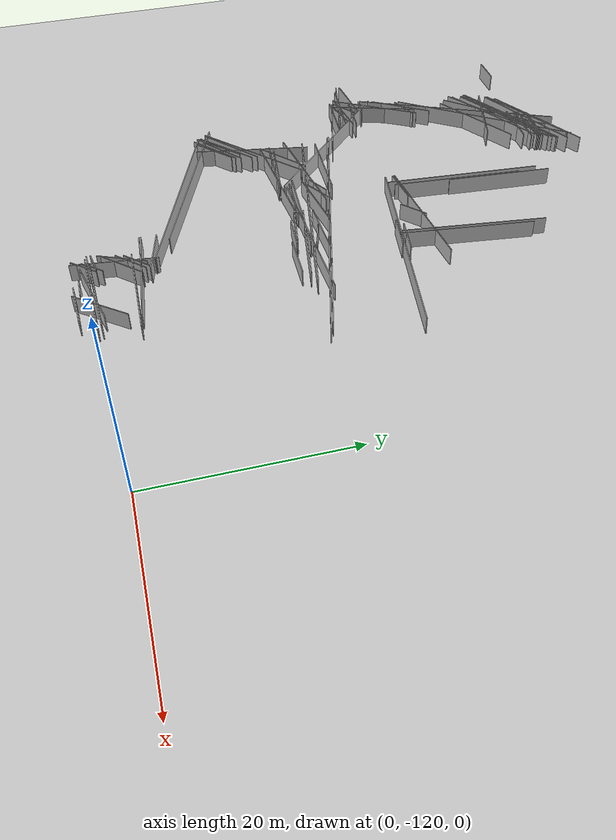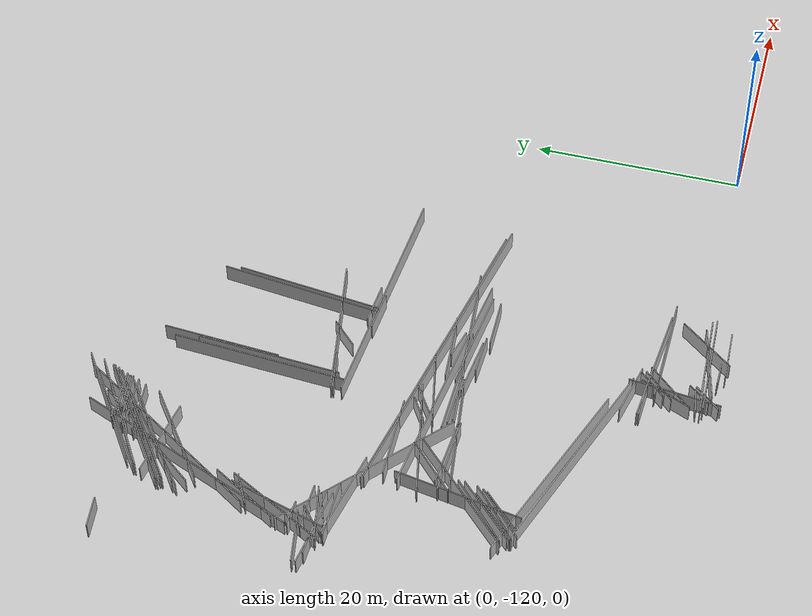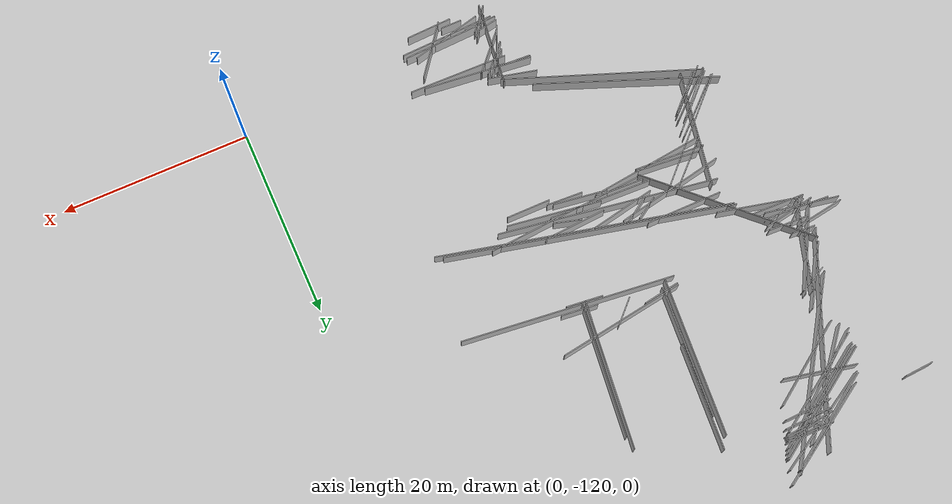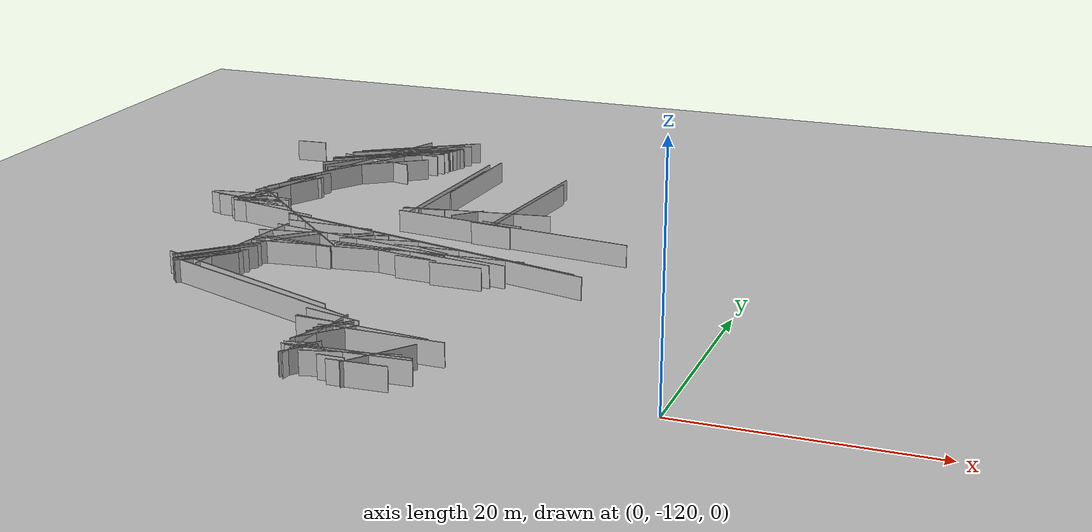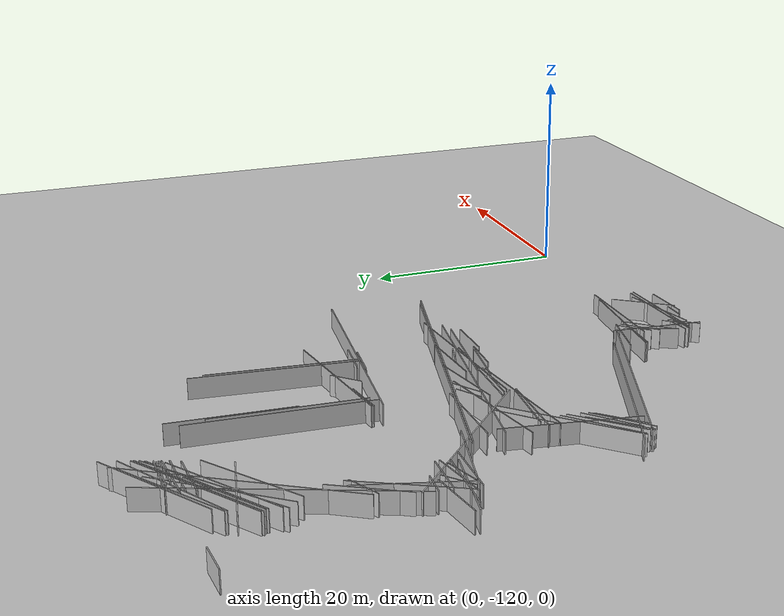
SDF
<sdf version="1.6">
 <world name="slam_world">
  <model name="ground_plane">
   <static>true</static>
   <link name="link">
    <collision name="collision">
     <geometry><plane><normal>0 0 1</normal><size>100 100</size></plane></geometry>
    </collision>
    <visual name="visual">
     <geometry><plane><normal>0 0 1</normal><size>100 100</size></plane></geometry>
     <material>
      <ambient>0.8 0.8 0.8 1</ambient>
      <diffuse>0.8 0.8 0.8 1</diffuse>
      <specular>0.8 0.8 0.8 1</specular>
     </material>
    </visual>
   </link>
  </model>
  <model name="wall_6">
   <static>true</static>
   <pose>-22.6 -89.8 1.0 0 0 -0.10768987083282093</pose>
   <link name="link">
    <collision name="collision"><geometry><box><size>22.32935287911408 0.1 2.0</size></box></geometry></collision>
    <visual name="visual">
     <geometry><box><size>22.32935287911408 0.1 2.0</size></box></geometry>
     <material><ambient>0.5 0.5 0.5 1</ambient><diffuse>0.7 0.7 0.7 1</diffuse></material>
    </visual>
   </link>
  </model>
  <model name="wall_36">
   <static>true</static>
   <pose>-46.5 -91.1 1.0 0 0 -0.03569911267932193</pose>
   <link name="link">
    <collision name="collision"><geometry><box><size>5.603570290448761 0.1 2.0</size></box></geometry></collision>
    <visual name="visual">
     <geometry><box><size>5.603570290448761 0.1 2.0</size></box></geometry>
     <material><ambient>0.5 0.5 0.5 1</ambient><diffuse>0.7 0.7 0.7 1</diffuse></material>
    </visual>
   </link>
  </model>
  <model name="wall_76">
   <static>true</static>
   <pose>-27.400000000000002 -120.6 1.0 0 0 0.17985349979247486</pose>
   <link name="link">
    <collision name="collision"><geometry><box><size>2.236067977499784 0.1 2.0</size></box></geometry></collision>
    <visual name="visual">
     <geometry><box><size>2.236067977499784 0.1 2.0</size></box></geometry>
     <material><ambient>0.5 0.5 0.5 1</ambient><diffuse>0.7 0.7 0.7 1</diffuse></material>
    </visual>
   </link>
  </model>
  <model name="wall_88">
   <static>true</static>
   <pose>-40.4 -68.3 1.0 0 0 0.5743048301747012</pose>
   <link name="link">
    <collision name="collision">
     <geometry><box><size>12.149074038789951 0.1 2.0</size></box></geometry>
    </collision>
    <visual name="visual">
     <geometry><box><size>12.149074038789951 0.1 2.0</size></box></geometry>
     <material><ambient>0.5 0.5 0.5 1</ambient><diffuse>0.7 0.7 0.7 1</diffuse></material>
    </visual>
   </link>
  </model>
  <model name="wall_90">
   <static>true</static>
   <pose>-27.0 -100.30000000000001 1.0 0 0 -0.05258306161094246</pose>
   <link name="link">
    <collision name="collision"><geometry><box><size>3.80525951808809 0.1 2.0</size></box></geometry></collision>
    <visual name="visual">
     <geometry><box><size>3.80525951808809 0.1 2.0</size></box></geometry>
     <material><ambient>0.5 0.5 0.5 1</ambient><diffuse>0.7 0.7 0.7 1</diffuse></material>
    </visual>
   </link>
  </model>
  <model name="wall_91">
   <static>true</static>
   <pose>-43.60000000000001 -103.9 1.0 0 0 0.7469555733762605</pose>
   <link name="link">
    <collision name="collision"><geometry><box><size>7.359347797189638 0.1 2.0</size></box></geometry></collision>
    <visual name="visual">
     <geometry><box><size>7.359347797189638 0.1 2.0</size></box></geometry>
     <material><ambient>0.5 0.5 0.5 1</ambient><diffuse>0.7 0.7 0.7 1</diffuse></material>
    </visual>
   </link>
  </model>
  <model name="wall_94">
   <static>true</static>
   <pose>-31.7 -96.89999999999999 1.0 0 0 0.19204801724073095</pose>
   <link name="link">
    <collision name="collision"><geometry><box><size>7.334848328356896 0.1 2.0</size></box></geometry></collision>
    <visual name="visual">
     <geometry><box><size>7.334848328356896 0.1 2.0</size></box></geometry>
     <material><ambient>0.5 0.5 0.5 1</ambient><diffuse>0.7 0.7 0.7 1</diffuse></material>
    </visual>
   </link>
  </model>
  <model name="wall_99">
   <static>true</static>
   <pose>-42.0 -75.3 1.0 0 0 0.6156198894291087</pose>
   <link name="link">
    <collision name="collision">
     <geometry><box><size>10.043903623591762 0.1 2.0</size></box></geometry>
    </collision>
    <visual name="visual">
     <geometry><box><size>10.043903623591762 0.1 2.0</size></box></geometry>
     <material><ambient>0.5 0.5 0.5 1</ambient><diffuse>0.7 0.7 0.7 1</diffuse></material>
    </visual>
   </link>
  </model>
  <model name="wall_104">
   <static>true</static>
   <pose>-44.8 -91.8 1.0 0 0 -0.22849663929186226</pose>
   <link name="link">
    <collision name="collision"><geometry><box><size>8.829496021857647 0.1 2.0</size></box></geometry></collision>
    <visual name="visual">
     <geometry><box><size>8.829496021857647 0.1 2.0</size></box></geometry>
     <material><ambient>0.5 0.5 0.5 1</ambient><diffuse>0.7 0.7 0.7 1</diffuse></material>
    </visual>
   </link>
  </model>
  <model name="wall_106">
   <static>true</static>
   <pose>-38.1 -109.3 1.0 0 0 -0.37089128881266237</pose>
   <link name="link">
    <collision name="collision">
     <geometry><box><size>19.313207915827967 0.1 2.0</size></box></geometry>
    </collision>
    <visual name="visual">
     <geometry><box><size>19.313207915827967 0.1 2.0</size></box></geometry>
     <material><ambient>0.5 0.5 0.5 1</ambient><diffuse>0.7 0.7 0.7 1</diffuse></material>
    </visual>
   </link>
  </model>
  <model name="wall_108">
   <static>true</static>
   <pose>-26.8 -97.39999999999999 1.0 0 0 0.060532019782107975</pose>
   <link name="link">
    <collision name="collision"><geometry><box><size>6.612110101926617 0.1 2.0</size></box></geometry></collision>
    <visual name="visual">
     <geometry><box><size>6.612110101926617 0.1 2.0</size></box></geometry>
     <material><ambient>0.5 0.5 0.5 1</ambient><diffuse>0.7 0.7 0.7 1</diffuse></material>
    </visual>
   </link>
  </model>
  <model name="wall_116">
   <static>true</static>
   <pose>-23.0 -121.1 1.0 0 0 0.2386093225082004</pose>
   <link name="link">
    <collision name="collision"><geometry><box><size>7.615773105863913 0.1 2.0</size></box></geometry></collision>
    <visual name="visual">
     <geometry><box><size>7.615773105863913 0.1 2.0</size></box></geometry>
     <material><ambient>0.5 0.5 0.5 1</ambient><diffuse>0.7 0.7 0.7 1</diffuse></material>
    </visual>
   </link>
  </model>
  <model name="wall_129">
   <static>true</static>
   <pose>-41.6 -71.1 1.0 0 0 0.5921866795496418</pose>
   <link name="link">
    <collision name="collision">
     <geometry><box><size>13.257450735341235 0.1 2.0</size></box></geometry>
    </collision>
    <visual name="visual">
     <geometry><box><size>13.257450735341235 0.1 2.0</size></box></geometry>
     <material><ambient>0.5 0.5 0.5 1</ambient><diffuse>0.7 0.7 0.7 1</diffuse></material>
    </visual>
   </link>
  </model>
  <model name="wall_158">
   <static>true</static>
   <pose>-43.2 -105.9 1.0 0 0 0.7853981633974462</pose>
   <link name="link">
    <collision name="collision"><geometry><box><size>4.808326112068521 0.1 2.0</size></box></geometry></collision>
    <visual name="visual">
     <geometry><box><size>4.808326112068521 0.1 2.0</size></box></geometry>
     <material><ambient>0.5 0.5 0.5 1</ambient><diffuse>0.7 0.7 0.7 1</diffuse></material>
    </visual>
   </link>
  </model>
  <model name="wall_184">
   <static>true</static>
   <pose>-32.1 -80.3 1.0 0 0 1.498632697835239</pose>
   <link name="link">
    <collision name="collision"><geometry><box><size>16.64331697709323 0.1 2.0</size></box></geometry></collision>
    <visual name="visual">
     <geometry><box><size>16.64331697709323 0.1 2.0</size></box></geometry>
     <material><ambient>0.5 0.5 0.5 1</ambient><diffuse>0.7 0.7 0.7 1</diffuse></material>
    </visual>
   </link>
  </model>
  <model name="wall_205">
   <static>true</static>
   <pose>-31.6 -81.1 1.0 0 0 1.4984589962563017</pose>
   <link name="link">
    <collision name="collision">
     <geometry><box><size>13.836184445142393 0.1 2.0</size></box></geometry>
    </collision>
    <visual name="visual">
     <geometry><box><size>13.836184445142393 0.1 2.0</size></box></geometry>
     <material><ambient>0.5 0.5 0.5 1</ambient><diffuse>0.7 0.7 0.7 1</diffuse></material>
    </visual>
   </link>
  </model>
  <model name="wall_221">
   <static>true</static>
   <pose>-36.10000000000001 -110.9 1.0 0 0 -0.36100530342246234</pose>
   <link name="link">
    <collision name="collision"><geometry><box><size>20.95041765693467 0.1 2.0</size></box></geometry></collision>
    <visual name="visual">
     <geometry><box><size>20.95041765693467 0.1 2.0</size></box></geometry>
     <material><ambient>0.5 0.5 0.5 1</ambient><diffuse>0.7 0.7 0.7 1</diffuse></material>
    </visual>
   </link>
  </model>
  <model name="wall_222">
   <static>true</static>
   <pose>-38.2 -99.7 1.0 0 0 -0.09065988720074433</pose>
   <link name="link">
    <collision name="collision"><geometry><box><size>6.62721661031235 0.1 2.0</size></box></geometry></collision>
    <visual name="visual">
     <geometry><box><size>6.62721661031235 0.1 2.0</size></box></geometry>
     <material><ambient>0.5 0.5 0.5 1</ambient><diffuse>0.7 0.7 0.7 1</diffuse></material>
    </visual>
   </link>
  </model>
  <model name="wall_232">
   <static>true</static>
   <pose>-30.3 -98.8 1.0 0 0 -0.03702011587393054</pose>
   <link name="link">
    <collision name="collision">
     <geometry><box><size>10.807404868885042 0.1 2.0</size></box></geometry>
    </collision>
    <visual name="visual">
     <geometry><box><size>10.807404868885042 0.1 2.0</size></box></geometry>
     <material><ambient>0.5 0.5 0.5 1</ambient><diffuse>0.7 0.7 0.7 1</diffuse></material>
    </visual>
   </link>
  </model>
  <model name="wall_240">
   <static>true</static>
   <pose>-41.8 -72.4 1.0 0 0 0.6747409422235522</pose>
   <link name="link">
    <collision name="collision">
     <geometry><box><size>14.086873322352272 0.1 2.0</size></box></geometry>
    </collision>
    <visual name="visual">
     <geometry><box><size>14.086873322352272 0.1 2.0</size></box></geometry>
     <material><ambient>0.5 0.5 0.5 1</ambient><diffuse>0.7 0.7 0.7 1</diffuse></material>
    </visual>
   </link>
  </model>
  <model name="wall_243">
   <static>true</static>
   <pose>-46.7 -83.0 1.0 0 0 1.0303768265243132</pose>
   <link name="link">
    <collision name="collision"><geometry><box><size>6.997142273814357 0.1 2.0</size></box></geometry></collision>
    <visual name="visual">
     <geometry><box><size>6.997142273814357 0.1 2.0</size></box></geometry>
     <material><ambient>0.5 0.5 0.5 1</ambient><diffuse>0.7 0.7 0.7 1</diffuse></material>
    </visual>
   </link>
  </model>
  <model name="wall_248">
   <static>true</static>
   <pose>-26.400000000000002 -98.80000000000001 1.0 0 0 0.07216362895965775</pose>
   <link name="link">
    <collision name="collision"><geometry><box><size>16.64331697709324 0.1 2.0</size></box></geometry></collision>
    <visual name="visual">
     <geometry><box><size>16.64331697709324 0.1 2.0</size></box></geometry>
     <material><ambient>0.5 0.5 0.5 1</ambient><diffuse>0.7 0.7 0.7 1</diffuse></material>
    </visual>
   </link>
  </model>
  <model name="wall_265">
   <static>true</static>
   <pose>-23.6 -89.2 1.0 0 0 -0.10487693873023546</pose>
   <link name="link">
    <collision name="collision">
     <geometry><box><size>3.8209946349085575 0.1 2.0</size></box></geometry>
    </collision>
    <visual name="visual">
     <geometry><box><size>3.8209946349085575 0.1 2.0</size></box></geometry>
     <material><ambient>0.5 0.5 0.5 1</ambient><diffuse>0.7 0.7 0.7 1</diffuse></material>
    </visual>
   </link>
  </model>
  <model name="wall_279">
   <static>true</static>
   <pose>-27.0 -118.6 1.0 0 0 1.457645345204412</pose>
   <link name="link">
    <collision name="collision"><geometry><box><size>8.856635930193809 0.1 2.0</size></box></geometry></collision>
    <visual name="visual">
     <geometry><box><size>8.856635930193809 0.1 2.0</size></box></geometry>
     <material><ambient>0.5 0.5 0.5 1</ambient><diffuse>0.7 0.7 0.7 1</diffuse></material>
    </visual>
   </link>
  </model>
  <model name="wall_322">
   <static>true</static>
   <pose>-28.5 -99.80000000000001 1.0 0 0 -0.1418970546041635</pose>
   <link name="link">
    <collision name="collision"><geometry><box><size>5.656854249492378 0.1 2.0</size></box></geometry></collision>
    <visual name="visual">
     <geometry><box><size>5.656854249492378 0.1 2.0</size></box></geometry>
     <material><ambient>0.5 0.5 0.5 1</ambient><diffuse>0.7 0.7 0.7 1</diffuse></material>
    </visual>
   </link>
  </model>
  <model name="wall_326">
   <static>true</static>
   <pose>-38.6 -100.0 1.0 0 0 -0.05400150037596912</pose>
   <link name="link">
    <collision name="collision"><geometry><box><size>7.410802925459554 0.1 2.0</size></box></geometry></collision>
    <visual name="visual">
     <geometry><box><size>7.410802925459554 0.1 2.0</size></box></geometry>
     <material><ambient>0.5 0.5 0.5 1</ambient><diffuse>0.7 0.7 0.7 1</diffuse></material>
    </visual>
   </link>
  </model>
  <model name="wall_362">
   <static>true</static>
   <pose>-23.2 -100.8 1.0 0 0 0.0</pose>
   <link name="link">
    <collision name="collision"><geometry><box><size>4.600000000000001 0.1 2.0</size></box></geometry></collision>
    <visual name="visual">
     <geometry><box><size>4.600000000000001 0.1 2.0</size></box></geometry>
     <material><ambient>0.5 0.5 0.5 1</ambient><diffuse>0.7 0.7 0.7 1</diffuse></material>
    </visual>
   </link>
  </model>
  <model name="wall_367">
   <static>true</static>
   <pose>-28.0 -96.19999999999999 1.0 0 0 -0.2272956190015954</pose>
   <link name="link">
    <collision name="collision"><geometry><box><size>30.17614952242914 0.1 2.0</size></box></geometry></collision>
    <visual name="visual">
     <geometry><box><size>30.17614952242914 0.1 2.0</size></box></geometry>
     <material><ambient>0.5 0.5 0.5 1</ambient><diffuse>0.7 0.7 0.7 1</diffuse></material>
    </visual>
   </link>
  </model>
  <model name="wall_402">
   <static>true</static>
   <pose>-32.5 -99.1 1.0 0 0 -0.038442590021188536</pose>
   <link name="link">
    <collision name="collision"><geometry><box><size>5.203844732503074 0.1 2.0</size></box></geometry></collision>
    <visual name="visual">
     <geometry><box><size>5.203844732503074 0.1 2.0</size></box></geometry>
     <material><ambient>0.5 0.5 0.5 1</ambient><diffuse>0.7 0.7 0.7 1</diffuse></material>
    </visual>
   </link>
  </model>
  <model name="wall_403">
   <static>true</static>
   <pose>-33.1 -96.3 1.0 0 0 0.5713374798336229</pose>
   <link name="link">
    <collision name="collision">
     <geometry><box><size>3.3286633954186358 0.1 2.0</size></box></geometry>
    </collision>
    <visual name="visual">
     <geometry><box><size>3.3286633954186358 0.1 2.0</size></box></geometry>
     <material><ambient>0.5 0.5 0.5 1</ambient><diffuse>0.7 0.7 0.7 1</diffuse></material>
    </visual>
   </link>
  </model>
  <model name="wall_405">
   <static>true</static>
   <pose>-23.6 -82.1 1.0 0 0 1.454441161588022</pose>
   <link name="link">
    <collision name="collision">
     <geometry><box><size>15.504837954651435 0.1 2.0</size></box></geometry>
    </collision>
    <visual name="visual">
     <geometry><box><size>15.504837954651435 0.1 2.0</size></box></geometry>
     <material><ambient>0.5 0.5 0.5 1</ambient><diffuse>0.7 0.7 0.7 1</diffuse></material>
    </visual>
   </link>
  </model>
  <model name="wall_406">
   <static>true</static>
   <pose>-26.400000000000002 -117.9 1.0 0 0 0.8408966686431649</pose>
   <link name="link">
    <collision name="collision"><geometry><box><size>5.099019513592782 0.1 2.0</size></box></geometry></collision>
    <visual name="visual">
     <geometry><box><size>5.099019513592782 0.1 2.0</size></box></geometry>
     <material><ambient>0.5 0.5 0.5 1</ambient><diffuse>0.7 0.7 0.7 1</diffuse></material>
    </visual>
   </link>
  </model>
  <model name="wall_413">
   <static>true</static>
   <pose>-46.300000000000004 -82.7 1.0 0 0 0.46364760900080815</pose>
   <link name="link">
    <collision name="collision">
     <geometry><box><size>3.1304951684997055 0.1 2.0</size></box></geometry>
    </collision>
    <visual name="visual">
     <geometry><box><size>3.1304951684997055 0.1 2.0</size></box></geometry>
     <material><ambient>0.5 0.5 0.5 1</ambient><diffuse>0.7 0.7 0.7 1</diffuse></material>
    </visual>
   </link>
  </model>
  <model name="wall_446">
   <static>true</static>
   <pose>-41.400000000000006 -69.2 1.0 0 0 0.5977583915930825</pose>
   <link name="link">
    <collision name="collision">
     <geometry><box><size>11.371895180663602 0.1 2.0</size></box></geometry>
    </collision>
    <visual name="visual">
     <geometry><box><size>11.371895180663602 0.1 2.0</size></box></geometry>
     <material><ambient>0.5 0.5 0.5 1</ambient><diffuse>0.7 0.7 0.7 1</diffuse></material>
    </visual>
   </link>
  </model>
  <model name="wall_448">
   <static>true</static>
   <pose>-23.3 -82.8 1.0 0 0 1.4570043196511884</pose>
   <link name="link">
    <collision name="collision"><geometry><box><size>14.09113196304683 0.1 2.0</size></box></geometry></collision>
    <visual name="visual">
     <geometry><box><size>14.09113196304683 0.1 2.0</size></box></geometry>
     <material><ambient>0.5 0.5 0.5 1</ambient><diffuse>0.7 0.7 0.7 1</diffuse></material>
    </visual>
   </link>
  </model>
  <model name="wall_468">
   <static>true</static>
   <pose>-23.1 -121.2 1.0 0 0 0.039978687123290606</pose>
   <link name="link">
    <collision name="collision">
     <geometry><box><size>10.007996802557443 0.1 2.0</size></box></geometry>
    </collision>
    <visual name="visual">
     <geometry><box><size>10.007996802557443 0.1 2.0</size></box></geometry>
     <material><ambient>0.5 0.5 0.5 1</ambient><diffuse>0.7 0.7 0.7 1</diffuse></material>
    </visual>
   </link>
  </model>
  <model name="wall_473">
   <static>true</static>
   <pose>-44.5 -76.9 1.0 0 0 1.1739781828443434</pose>
   <link name="link">
    <collision name="collision">
     <geometry><box><size>22.769277546729498 0.1 2.0</size></box></geometry>
    </collision>
    <visual name="visual">
     <geometry><box><size>22.769277546729498 0.1 2.0</size></box></geometry>
     <material><ambient>0.5 0.5 0.5 1</ambient><diffuse>0.7 0.7 0.7 1</diffuse></material>
    </visual>
   </link>
  </model>
  <model name="wall_500">
   <static>true</static>
   <pose>-26.6 -117.0 1.0 0 0 0.8224182792713808</pose>
   <link name="link">
    <collision name="collision"><geometry><box><size>3.820994634908567 0.1 2.0</size></box></geometry></collision>
    <visual name="visual">
     <geometry><box><size>3.820994634908567 0.1 2.0</size></box></geometry>
     <material><ambient>0.5 0.5 0.5 1</ambient><diffuse>0.7 0.7 0.7 1</diffuse></material>
    </visual>
   </link>
  </model>
  <model name="wall_547">
   <static>true</static>
   <pose>-51.800000000000004 -70.3 1.0 0 0 0.06656816377582947</pose>
   <link name="link">
    <collision name="collision">
     <geometry><box><size>3.0066592756745827 0.1 2.0</size></box></geometry>
    </collision>
    <visual name="visual">
     <geometry><box><size>3.0066592756745827 0.1 2.0</size></box></geometry>
     <material><ambient>0.5 0.5 0.5 1</ambient><diffuse>0.7 0.7 0.7 1</diffuse></material>
    </visual>
   </link>
  </model>
  <model name="wall_564">
   <static>true</static>
   <pose>-48.1 -90.0 1.0 0 0 -0.05875582271572147</pose>
   <link name="link">
    <collision name="collision"><geometry><box><size>6.811754546370557 0.1 2.0</size></box></geometry></collision>
    <visual name="visual">
     <geometry><box><size>6.811754546370557 0.1 2.0</size></box></geometry>
     <material><ambient>0.5 0.5 0.5 1</ambient><diffuse>0.7 0.7 0.7 1</diffuse></material>
    </visual>
   </link>
  </model>
  <model name="wall_575">
   <static>true</static>
   <pose>-21.0 -120.5 1.0 0 0 0.9209258773829494</pose>
   <link name="link">
    <collision name="collision"><geometry><box><size>6.280127387243031 0.1 2.0</size></box></geometry></collision>
    <visual name="visual">
     <geometry><box><size>6.280127387243031 0.1 2.0</size></box></geometry>
     <material><ambient>0.5 0.5 0.5 1</ambient><diffuse>0.7 0.7 0.7 1</diffuse></material>
    </visual>
   </link>
  </model>
  <model name="wall_584">
   <static>true</static>
   <pose>-26.8 -121.1 1.0 0 0 0.05875582271572355</pose>
   <link name="link">
    <collision name="collision">
     <geometry><box><size>3.4058772731852787 0.1 2.0</size></box></geometry>
    </collision>
    <visual name="visual">
     <geometry><box><size>3.4058772731852787 0.1 2.0</size></box></geometry>
     <material><ambient>0.5 0.5 0.5 1</ambient><diffuse>0.7 0.7 0.7 1</diffuse></material>
    </visual>
   </link>
  </model>
  <model name="wall_591">
   <static>true</static>
   <pose>-47.300000000000004 -86.0 1.0 0 0 1.0714496051147673</pose>
   <link name="link">
    <collision name="collision">
     <geometry><box><size>10.023971268913343 0.1 2.0</size></box></geometry>
    </collision>
    <visual name="visual">
     <geometry><box><size>10.023971268913343 0.1 2.0</size></box></geometry>
     <material><ambient>0.5 0.5 0.5 1</ambient><diffuse>0.7 0.7 0.7 1</diffuse></material>
    </visual>
   </link>
  </model>
  <model name="wall_595">
   <static>true</static>
   <pose>-49.900000000000006 -88.6 1.0 0 0 0.15264932839526743</pose>
   <link name="link">
    <collision name="collision"><geometry><box><size>5.26117857518636 0.1 2.0</size></box></geometry></collision>
    <visual name="visual">
     <geometry><box><size>5.26117857518636 0.1 2.0</size></box></geometry>
     <material><ambient>0.5 0.5 0.5 1</ambient><diffuse>0.7 0.7 0.7 1</diffuse></material>
    </visual>
   </link>
  </model>
  <model name="wall_597">
   <static>true</static>
   <pose>-34.2 -96.1 1.0 0 0 0.5667292175235045</pose>
   <link name="link">
    <collision name="collision">
     <geometry><box><size>2.6076809620810515 0.1 2.0</size></box></geometry>
    </collision>
    <visual name="visual">
     <geometry><box><size>2.6076809620810515 0.1 2.0</size></box></geometry>
     <material><ambient>0.5 0.5 0.5 1</ambient><diffuse>0.7 0.7 0.7 1</diffuse></material>
    </visual>
   </link>
  </model>
  <model name="wall_617">
   <static>true</static>
   <pose>-25.4 -99.3 1.0 0 0 -0.1418970546041645</pose>
   <link name="link">
    <collision name="collision"><geometry><box><size>9.899494936611667 0.1 2.0</size></box></geometry></collision>
    <visual name="visual">
     <geometry><box><size>9.899494936611667 0.1 2.0</size></box></geometry>
     <material><ambient>0.5 0.5 0.5 1</ambient><diffuse>0.7 0.7 0.7 1</diffuse></material>
    </visual>
   </link>
  </model>
  <model name="wall_619">
   <static>true</static>
   <pose>-40.1 -98.69999999999999 1.0 0 0 0.7621465405869867</pose>
   <link name="link">
    <collision name="collision"><geometry><box><size>6.082762530298216 0.1 2.0</size></box></geometry></collision>
    <visual name="visual">
     <geometry><box><size>6.082762530298216 0.1 2.0</size></box></geometry>
     <material><ambient>0.5 0.5 0.5 1</ambient><diffuse>0.7 0.7 0.7 1</diffuse></material>
    </visual>
   </link>
  </model>
  <model name="wall_631">
   <static>true</static>
   <pose>-26.7 -120.8 1.0 0 0 0.8960553845713435</pose>
   <link name="link">
    <collision name="collision">
     <geometry><box><size>2.5612496949731405 0.1 2.0</size></box></geometry>
    </collision>
    <visual name="visual">
     <geometry><box><size>2.5612496949731405 0.1 2.0</size></box></geometry>
     <material><ambient>0.5 0.5 0.5 1</ambient><diffuse>0.7 0.7 0.7 1</diffuse></material>
    </visual>
   </link>
  </model>
  <model name="wall_656">
   <static>true</static>
   <pose>-37.2 -96.9 1.0 0 0 0.19063890591409566</pose>
   <link name="link">
    <collision name="collision"><geometry><box><size>11.61034021896 0.1 2.0</size></box></geometry></collision>
    <visual name="visual">
     <geometry><box><size>11.61034021896 0.1 2.0</size></box></geometry>
     <material><ambient>0.5 0.5 0.5 1</ambient><diffuse>0.7 0.7 0.7 1</diffuse></material>
    </visual>
   </link>
  </model>
  <model name="wall_671">
   <static>true</static>
   <pose>-42.800000000000004 -72.69999999999999 1.0 0 0 0.8985491449879328</pose>
   <link name="link">
    <collision name="collision">
     <geometry><box><size>12.525174649480936 0.1 2.0</size></box></geometry>
    </collision>
    <visual name="visual">
     <geometry><box><size>12.525174649480936 0.1 2.0</size></box></geometry>
     <material><ambient>0.5 0.5 0.5 1</ambient><diffuse>0.7 0.7 0.7 1</diffuse></material>
    </visual>
   </link>
  </model>
  <model name="wall_674">
   <static>true</static>
   <pose>-22.5 -116.9 1.0 0 0 -0.019228399099707468</pose>
   <link name="link">
    <collision name="collision"><geometry><box><size>10.40192289915668 0.1 2.0</size></box></geometry></collision>
    <visual name="visual">
     <geometry><box><size>10.40192289915668 0.1 2.0</size></box></geometry>
     <material><ambient>0.5 0.5 0.5 1</ambient><diffuse>0.7 0.7 0.7 1</diffuse></material>
    </visual>
   </link>
  </model>
  <model name="wall_681">
   <static>true</static>
   <pose>-41.6 -71.3 1.0 0 0 0.5921866795496427</pose>
   <link name="link">
    <collision name="collision">
     <geometry><box><size>13.257450735341244 0.1 2.0</size></box></geometry>
    </collision>
    <visual name="visual">
     <geometry><box><size>13.257450735341244 0.1 2.0</size></box></geometry>
     <material><ambient>0.5 0.5 0.5 1</ambient><diffuse>0.7 0.7 0.7 1</diffuse></material>
    </visual>
   </link>
  </model>
  <model name="wall_685">
   <static>true</static>
   <pose>-46.7 -90.3 1.0 0 0 0.30288486837497114</pose>
   <link name="link">
    <collision name="collision">
     <geometry><box><size>3.3526109228480445 0.1 2.0</size></box></geometry>
    </collision>
    <visual name="visual">
     <geometry><box><size>3.3526109228480445 0.1 2.0</size></box></geometry>
     <material><ambient>0.5 0.5 0.5 1</ambient><diffuse>0.7 0.7 0.7 1</diffuse></material>
    </visual>
   </link>
  </model>
  <model name="wall_688">
   <static>true</static>
   <pose>-42.1 -74.3 1.0 0 0 0.9988781269336345</pose>
   <link name="link">
    <collision name="collision">
     <geometry><box><size>20.692993983471805 0.1 2.0</size></box></geometry>
    </collision>
    <visual name="visual">
     <geometry><box><size>20.692993983471805 0.1 2.0</size></box></geometry>
     <material><ambient>0.5 0.5 0.5 1</ambient><diffuse>0.7 0.7 0.7 1</diffuse></material>
    </visual>
   </link>
  </model>
  <model name="wall_690">
   <static>true</static>
   <pose>-27.6 -87.3 1.0 0 0 0.7853981633974515</pose>
   <link name="link">
    <collision name="collision">
     <geometry><box><size>3.1112698372208234 0.1 2.0</size></box></geometry>
    </collision>
    <visual name="visual">
     <geometry><box><size>3.1112698372208234 0.1 2.0</size></box></geometry>
     <material><ambient>0.5 0.5 0.5 1</ambient><diffuse>0.7 0.7 0.7 1</diffuse></material>
    </visual>
   </link>
  </model>
  <model name="wall_698">
   <static>true</static>
   <pose>-26.9 -121.6 1.0 0 0 0.8760580505981908</pose>
   <link name="link">
    <collision name="collision">
     <geometry><box><size>3.1240998703626572 0.1 2.0</size></box></geometry>
    </collision>
    <visual name="visual">
     <geometry><box><size>3.1240998703626572 0.1 2.0</size></box></geometry>
     <material><ambient>0.5 0.5 0.5 1</ambient><diffuse>0.7 0.7 0.7 1</diffuse></material>
    </visual>
   </link>
  </model>
  <model name="wall_700">
   <static>true</static>
   <pose>-43.400000000000006 -104.5 1.0 0 0 0.7853981633974483</pose>
   <link name="link">
    <collision name="collision">
     <geometry><box><size>7.0710678118654755 0.1 2.0</size></box></geometry>
    </collision>
    <visual name="visual">
     <geometry><box><size>7.0710678118654755 0.1 2.0</size></box></geometry>
     <material><ambient>0.5 0.5 0.5 1</ambient><diffuse>0.7 0.7 0.7 1</diffuse></material>
    </visual>
   </link>
  </model>
  <model name="wall_736">
   <static>true</static>
   <pose>-24.0 -122.2 1.0 0 0 0.0</pose>
   <link name="link">
    <collision name="collision"><geometry><box><size>2.200000000000003 0.1 2.0</size></box></geometry></collision>
    <visual name="visual">
     <geometry><box><size>2.200000000000003 0.1 2.0</size></box></geometry>
     <material><ambient>0.5 0.5 0.5 1</ambient><diffuse>0.7 0.7 0.7 1</diffuse></material>
    </visual>
   </link>
  </model>
  <model name="wall_751">
   <static>true</static>
   <pose>-28.200000000000003 -115.9 1.0 0 0 -0.052583061610942505</pose>
   <link name="link">
    <collision name="collision"><geometry><box><size>3.805259518088087 0.1 2.0</size></box></geometry></collision>
    <visual name="visual">
     <geometry><box><size>3.805259518088087 0.1 2.0</size></box></geometry>
     <material><ambient>0.5 0.5 0.5 1</ambient><diffuse>0.7 0.7 0.7 1</diffuse></material>
    </visual>
   </link>
  </model>
  <model name="wall_752">
   <static>true</static>
   <pose>-27.5 -96.5 1.0 0 0 -0.22923193327699534</pose>
   <link name="link">
    <collision name="collision">
     <geometry><box><size>30.805843601498726 0.1 2.0</size></box></geometry>
    </collision>
    <visual name="visual">
     <geometry><box><size>30.805843601498726 0.1 2.0</size></box></geometry>
     <material><ambient>0.5 0.5 0.5 1</ambient><diffuse>0.7 0.7 0.7 1</diffuse></material>
    </visual>
   </link>
  </model>
  <model name="wall_763">
   <static>true</static>
   <pose>-38.7 -69.5 1.0 0 0 0.05549850524571377</pose>
   <link name="link">
    <collision name="collision"><geometry><box><size>3.605551275463983 0.1 2.0</size></box></geometry></collision>
    <visual name="visual">
     <geometry><box><size>3.605551275463983 0.1 2.0</size></box></geometry>
     <material><ambient>0.5 0.5 0.5 1</ambient><diffuse>0.7 0.7 0.7 1</diffuse></material>
    </visual>
   </link>
  </model>
  <model name="wall_770">
   <static>true</static>
   <pose>-40.900000000000006 -69.5 1.0 0 0 0.5375866466587457</pose>
   <link name="link">
    <collision name="collision">
     <geometry><box><size>12.107848694132242 0.1 2.0</size></box></geometry>
    </collision>
    <visual name="visual">
     <geometry><box><size>12.107848694132242 0.1 2.0</size></box></geometry>
     <material><ambient>0.5 0.5 0.5 1</ambient><diffuse>0.7 0.7 0.7 1</diffuse></material>
    </visual>
   </link>
  </model>
  <model name="wall_775">
   <static>true</static>
   <pose>-21.7 -122.69999999999999 1.0 0 0 0.041642579098588976</pose>
   <link name="link">
    <collision name="collision"><geometry><box><size>4.80416485978573 0.1 2.0</size></box></geometry></collision>
    <visual name="visual">
     <geometry><box><size>4.80416485978573 0.1 2.0</size></box></geometry>
     <material><ambient>0.5 0.5 0.5 1</ambient><diffuse>0.7 0.7 0.7 1</diffuse></material>
    </visual>
   </link>
  </model>
  <model name="wall_777">
   <static>true</static>
   <pose>-41.9 -101.8 1.0 0 0 0.7853981633974491</pose>
   <link name="link">
    <collision name="collision">
     <geometry><box><size>13.010764773832488 0.1 2.0</size></box></geometry>
    </collision>
    <visual name="visual">
     <geometry><box><size>13.010764773832488 0.1 2.0</size></box></geometry>
     <material><ambient>0.5 0.5 0.5 1</ambient><diffuse>0.7 0.7 0.7 1</diffuse></material>
    </visual>
   </link>
  </model>
  <model name="wall_782">
   <static>true</static>
   <pose>-42.8 -74.0 1.0 0 0 -0.21293834957939828</pose>
   <link name="link">
    <collision name="collision"><geometry><box><size>7.57099729229908 0.1 2.0</size></box></geometry></collision>
    <visual name="visual">
     <geometry><box><size>7.57099729229908 0.1 2.0</size></box></geometry>
     <material><ambient>0.5 0.5 0.5 1</ambient><diffuse>0.7 0.7 0.7 1</diffuse></material>
    </visual>
   </link>
  </model>
  <model name="wall_783">
   <static>true</static>
   <pose>-27.6 -114.6 1.0 0 0 -0.23554498072086388</pose>
   <link name="link">
    <collision name="collision"><geometry><box><size>5.141984052872977 0.1 2.0</size></box></geometry></collision>
    <visual name="visual">
     <geometry><box><size>5.141984052872977 0.1 2.0</size></box></geometry>
     <material><ambient>0.5 0.5 0.5 1</ambient><diffuse>0.7 0.7 0.7 1</diffuse></material>
    </visual>
   </link>
  </model>
  <model name="wall_806">
   <static>true</static>
   <pose>-31.800000000000004 -87.5 1.0 0 0 0.15660187698201752</pose>
   <link name="link">
    <collision name="collision"><geometry><box><size>3.847076812334271 0.1 2.0</size></box></geometry></collision>
    <visual name="visual">
     <geometry><box><size>3.847076812334271 0.1 2.0</size></box></geometry>
     <material><ambient>0.5 0.5 0.5 1</ambient><diffuse>0.7 0.7 0.7 1</diffuse></material>
    </visual>
   </link>
  </model>
  <model name="wall_814">
   <static>true</static>
   <pose>-43.4 -105.8 1.0 0 0 0.7610127542247295</pose>
   <link name="link">
    <collision name="collision">
     <geometry><box><size>5.8000000000000025 0.1 2.0</size></box></geometry>
    </collision>
    <visual name="visual">
     <geometry><box><size>5.8000000000000025 0.1 2.0</size></box></geometry>
     <material><ambient>0.5 0.5 0.5 1</ambient><diffuse>0.7 0.7 0.7 1</diffuse></material>
    </visual>
   </link>
  </model>
  <model name="wall_818">
   <static>true</static>
   <pose>-48.7 -90.1 1.0 0 0 -0.1821683104727625</pose>
   <link name="link">
    <collision name="collision"><geometry><box><size>7.727871634544656 0.1 2.0</size></box></geometry></collision>
    <visual name="visual">
     <geometry><box><size>7.727871634544656 0.1 2.0</size></box></geometry>
     <material><ambient>0.5 0.5 0.5 1</ambient><diffuse>0.7 0.7 0.7 1</diffuse></material>
    </visual>
   </link>
  </model>
  <model name="wall_820">
   <static>true</static>
   <pose>-27.0 -86.6 1.0 0 0 0.14816002073183132</pose>
   <link name="link">
    <collision name="collision">
     <geometry><box><size>13.548431643551963 0.1 2.0</size></box></geometry>
    </collision>
    <visual name="visual">
     <geometry><box><size>13.548431643551963 0.1 2.0</size></box></geometry>
     <material><ambient>0.5 0.5 0.5 1</ambient><diffuse>0.7 0.7 0.7 1</diffuse></material>
    </visual>
   </link>
  </model>
  <model name="wall_844">
   <static>true</static>
   <pose>-43.1 -105.0 1.0 0 0 0.7328151017865058</pose>
   <link name="link">
    <collision name="collision"><geometry><box><size>5.38144961882948 0.1 2.0</size></box></geometry></collision>
    <visual name="visual">
     <geometry><box><size>5.38144961882948 0.1 2.0</size></box></geometry>
     <material><ambient>0.5 0.5 0.5 1</ambient><diffuse>0.7 0.7 0.7 1</diffuse></material>
    </visual>
   </link>
  </model>
  <model name="wall_846">
   <static>true</static>
   <pose>-31.1 -76.4 1.0 0 0 1.4994888620096065</pose>
   <link name="link">
    <collision name="collision">
     <geometry><box><size>11.228535078094563 0.1 2.0</size></box></geometry>
    </collision>
    <visual name="visual">
     <geometry><box><size>11.228535078094563 0.1 2.0</size></box></geometry>
     <material><ambient>0.5 0.5 0.5 1</ambient><diffuse>0.7 0.7 0.7 1</diffuse></material>
    </visual>
   </link>
  </model>
  <model name="wall_852">
   <static>true</static>
   <pose>-24.400000000000002 -116.19999999999999 1.0 0 0 -0.10487693873023415</pose>
   <link name="link">
    <collision name="collision">
     <geometry><box><size>11.462983904725679 0.1 2.0</size></box></geometry>
    </collision>
    <visual name="visual">
     <geometry><box><size>11.462983904725679 0.1 2.0</size></box></geometry>
     <material><ambient>0.5 0.5 0.5 1</ambient><diffuse>0.7 0.7 0.7 1</diffuse></material>
    </visual>
   </link>
  </model>
  <model name="wall_854">
   <static>true</static>
   <pose>-47.1 -86.19999999999999 1.0 0 0 1.275355489651177</pose>
   <link name="link">
    <collision name="collision"><geometry><box><size>9.616652224137049 0.1 2.0</size></box></geometry></collision>
    <visual name="visual">
     <geometry><box><size>9.616652224137049 0.1 2.0</size></box></geometry>
     <material><ambient>0.5 0.5 0.5 1</ambient><diffuse>0.7 0.7 0.7 1</diffuse></material>
    </visual>
   </link>
  </model>
  <model name="wall_868">
   <static>true</static>
   <pose>-40.0 -71.1 1.0 0 0 0.039978687123287775</pose>
   <link name="link">
    <collision name="collision"><geometry><box><size>5.003998401278721 0.1 2.0</size></box></geometry></collision>
    <visual name="visual">
     <geometry><box><size>5.003998401278721 0.1 2.0</size></box></geometry>
     <material><ambient>0.5 0.5 0.5 1</ambient><diffuse>0.7 0.7 0.7 1</diffuse></material>
    </visual>
   </link>
  </model>
  <model name="wall_907">
   <static>true</static>
   <pose>-26.6 -116.4 1.0 0 0 0.8288490587889767</pose>
   <link name="link">
    <collision name="collision">
     <geometry><box><size>3.2557641192199367 0.1 2.0</size></box></geometry>
    </collision>
    <visual name="visual">
     <geometry><box><size>3.2557641192199367 0.1 2.0</size></box></geometry>
     <material><ambient>0.5 0.5 0.5 1</ambient><diffuse>0.7 0.7 0.7 1</diffuse></material>
    </visual>
   </link>
  </model>
  <model name="wall_913">
   <static>true</static>
   <pose>-41.800000000000004 -93.0 1.0 0 0 -0.7631795980707289</pose>
   <link name="link">
    <collision name="collision">
     <geometry><box><size>19.096596555407448 0.1 2.0</size></box></geometry>
    </collision>
    <visual name="visual">
     <geometry><box><size>19.096596555407448 0.1 2.0</size></box></geometry>
     <material><ambient>0.5 0.5 0.5 1</ambient><diffuse>0.7 0.7 0.7 1</diffuse></material>
    </visual>
   </link>
  </model>
  <model name="wall_915">
   <static>true</static>
   <pose>-30.7 -97.8 1.0 0 0 -0.15660187698201508</pose>
   <link name="link">
    <collision name="collision">
     <geometry><box><size>23.082460874005616 0.1 2.0</size></box></geometry>
    </collision>
    <visual name="visual">
     <geometry><box><size>23.082460874005616 0.1 2.0</size></box></geometry>
     <material><ambient>0.5 0.5 0.5 1</ambient><diffuse>0.7 0.7 0.7 1</diffuse></material>
    </visual>
   </link>
  </model>
  <model name="wall_919">
   <static>true</static>
   <pose>-43.900000000000006 -105.30000000000001 1.0 0 0 0.8097835725701672</pose>
   <link name="link">
    <collision name="collision">
     <geometry><box><size>5.8000000000000025 0.1 2.0</size></box></geometry>
    </collision>
    <visual name="visual">
     <geometry><box><size>5.8000000000000025 0.1 2.0</size></box></geometry>
     <material><ambient>0.5 0.5 0.5 1</ambient><diffuse>0.7 0.7 0.7 1</diffuse></material>
    </visual>
   </link>
  </model>
  <model name="wall_920">
   <static>true</static>
   <pose>-42.2 -73.1 1.0 0 0 0.5926974047350632</pose>
   <link name="link">
    <collision name="collision">
     <geometry><box><size>11.815244390193552 0.1 2.0</size></box></geometry>
    </collision>
    <visual name="visual">
     <geometry><box><size>11.815244390193552 0.1 2.0</size></box></geometry>
     <material><ambient>0.5 0.5 0.5 1</ambient><diffuse>0.7 0.7 0.7 1</diffuse></material>
    </visual>
   </link>
  </model>
  <model name="wall_933">
   <static>true</static>
   <pose>-42.4 -101.69999999999999 1.0 0 0 1.392385827443856</pose>
   <link name="link">
    <collision name="collision">
     <geometry><box><size>12.396773773849391 0.1 2.0</size></box></geometry>
    </collision>
    <visual name="visual">
     <geometry><box><size>12.396773773849391 0.1 2.0</size></box></geometry>
     <material><ambient>0.5 0.5 0.5 1</ambient><diffuse>0.7 0.7 0.7 1</diffuse></material>
    </visual>
   </link>
  </model>
  <model name="wall_943">
   <static>true</static>
   <pose>-46.7 -88.9 1.0 0 0 -0.0454232794215776</pose>
   <link name="link">
    <collision name="collision"><geometry><box><size>4.404543109109054 0.1 2.0</size></box></geometry></collision>
    <visual name="visual">
     <geometry><box><size>4.404543109109054 0.1 2.0</size></box></geometry>
     <material><ambient>0.5 0.5 0.5 1</ambient><diffuse>0.7 0.7 0.7 1</diffuse></material>
    </visual>
   </link>
  </model>
  <model name="wall_957">
   <static>true</static>
   <pose>-26.3 -98.0 1.0 0 0 -0.2782996590051147</pose>
   <link name="link">
    <collision name="collision">
     <geometry><box><size>2.9120439557122144 0.1 2.0</size></box></geometry>
    </collision>
    <visual name="visual">
     <geometry><box><size>2.9120439557122144 0.1 2.0</size></box></geometry>
     <material><ambient>0.5 0.5 0.5 1</ambient><diffuse>0.7 0.7 0.7 1</diffuse></material>
    </visual>
   </link>
  </model>
  <model name="wall_980">
   <static>true</static>
   <pose>-38.900000000000006 -69.19999999999999 1.0 0 0 0.0</pose>
   <link name="link">
    <collision name="collision"><geometry><box><size>4.0 0.1 2.0</size></box></geometry></collision>
    <visual name="visual">
     <geometry><box><size>4.0 0.1 2.0</size></box></geometry>
     <material><ambient>0.5 0.5 0.5 1</ambient><diffuse>0.7 0.7 0.7 1</diffuse></material>
    </visual>
   </link>
  </model>
  <model name="wall_987">
   <static>true</static>
   <pose>-24.400000000000002 -89.8 1.0 0 0 -0.10487693873023526</pose>
   <link name="link">
    <collision name="collision"><geometry><box><size>3.820994634908565 0.1 2.0</size></box></geometry></collision>
    <visual name="visual">
     <geometry><box><size>3.820994634908565 0.1 2.0</size></box></geometry>
     <material><ambient>0.5 0.5 0.5 1</ambient><diffuse>0.7 0.7 0.7 1</diffuse></material>
    </visual>
   </link>
  </model>
  <model name="wall_989">
   <static>true</static>
   <pose>-39.5 -69.8 1.0 0 0 0.0767718912697792</pose>
   <link name="link">
    <collision name="collision"><geometry><box><size>5.215361924162115 0.1 2.0</size></box></geometry></collision>
    <visual name="visual">
     <geometry><box><size>5.215361924162115 0.1 2.0</size></box></geometry>
     <material><ambient>0.5 0.5 0.5 1</ambient><diffuse>0.7 0.7 0.7 1</diffuse></material>
    </visual>
   </link>
  </model>
  <model name="wall_1014">
   <static>true</static>
   <pose>-27.300000000000004 -117.80000000000001 1.0 0 0 1.1760052070951355</pose>
   <link name="link">
    <collision name="collision"><geometry><box><size>5.199999999999996 0.1 2.0</size></box></geometry></collision>
    <visual name="visual">
     <geometry><box><size>5.199999999999996 0.1 2.0</size></box></geometry>
     <material><ambient>0.5 0.5 0.5 1</ambient><diffuse>0.7 0.7 0.7 1</diffuse></material>
    </visual>
   </link>
  </model>
  <model name="wall_1016">
   <static>true</static>
   <pose>-39.7 -70.3 1.0 0 0 0.03844259002119129</pose>
   <link name="link">
    <collision name="collision"><geometry><box><size>5.203844732503072 0.1 2.0</size></box></geometry></collision>
    <visual name="visual">
     <geometry><box><size>5.203844732503072 0.1 2.0</size></box></geometry>
     <material><ambient>0.5 0.5 0.5 1</ambient><diffuse>0.7 0.7 0.7 1</diffuse></material>
    </visual>
   </link>
  </model>
  <model name="wall_1027">
   <static>true</static>
   <pose>-43.5 -72.89999999999999 1.0 0 0 0.5947592574833519</pose>
   <link name="link">
    <collision name="collision"><geometry><box><size>8.209750300709517 0.1 2.0</size></box></geometry></collision>
    <visual name="visual">
     <geometry><box><size>8.209750300709517 0.1 2.0</size></box></geometry>
     <material><ambient>0.5 0.5 0.5 1</ambient><diffuse>0.7 0.7 0.7 1</diffuse></material>
    </visual>
   </link>
  </model>
  <model name="wall_1031">
   <static>true</static>
   <pose>-36.1 -100.1 1.0 0 0 0.11614162687998952</pose>
   <link name="link">
    <collision name="collision">
     <geometry><box><size>12.081390648431164 0.1 2.0</size></box></geometry>
    </collision>
    <visual name="visual">
     <geometry><box><size>12.081390648431164 0.1 2.0</size></box></geometry>
     <material><ambient>0.5 0.5 0.5 1</ambient><diffuse>0.7 0.7 0.7 1</diffuse></material>
    </visual>
   </link>
  </model>
  <model name="wall_1035">
   <static>true</static>
   <pose>-37.7 -94.6 1.0 0 0 0.0</pose>
   <link name="link">
    <collision name="collision"><geometry><box><size>8.0 0.1 2.0</size></box></geometry></collision>
    <visual name="visual">
     <geometry><box><size>8.0 0.1 2.0</size></box></geometry>
     <material><ambient>0.5 0.5 0.5 1</ambient><diffuse>0.7 0.7 0.7 1</diffuse></material>
    </visual>
   </link>
  </model>
  <model name="wall_1044">
   <static>true</static>
   <pose>-39.2 -69.0 1.0 0 0 0.0</pose>
   <link name="link">
    <collision name="collision"><geometry><box><size>5.0 0.1 2.0</size></box></geometry></collision>
    <visual name="visual">
     <geometry><box><size>5.0 0.1 2.0</size></box></geometry>
     <material><ambient>0.5 0.5 0.5 1</ambient><diffuse>0.7 0.7 0.7 1</diffuse></material>
    </visual>
   </link>
  </model>
  <model name="wall_1083">
   <static>true</static>
   <pose>-47.2 -89.9 1.0 0 0 0.18311081726248393</pose>
   <link name="link">
    <collision name="collision"><geometry><box><size>5.491812087098398 0.1 2.0</size></box></geometry></collision>
    <visual name="visual">
     <geometry><box><size>5.491812087098398 0.1 2.0</size></box></geometry>
     <material><ambient>0.5 0.5 0.5 1</ambient><diffuse>0.7 0.7 0.7 1</diffuse></material>
    </visual>
   </link>
  </model>
  <model name="wall_1098">
   <static>true</static>
   <pose>-47.7 -87.69999999999999 1.0 0 0 -0.0831412318884422</pose>
   <link name="link">
    <collision name="collision"><geometry><box><size>2.408318915758465 0.1 2.0</size></box></geometry></collision>
    <visual name="visual">
     <geometry><box><size>2.408318915758465 0.1 2.0</size></box></geometry>
     <material><ambient>0.5 0.5 0.5 1</ambient><diffuse>0.7 0.7 0.7 1</diffuse></material>
    </visual>
   </link>
  </model>
  <model name="wall_1102">
   <static>true</static>
   <pose>-22.7 -120.8 1.0 0 0 0.04542327942157764</pose>
   <link name="link">
    <collision name="collision"><geometry><box><size>8.8090862182181 0.1 2.0</size></box></geometry></collision>
    <visual name="visual">
     <geometry><box><size>8.8090862182181 0.1 2.0</size></box></geometry>
     <material><ambient>0.5 0.5 0.5 1</ambient><diffuse>0.7 0.7 0.7 1</diffuse></material>
    </visual>
   </link>
  </model>
  <model name="wall_1103">
   <static>true</static>
   <pose>-47.900000000000006 -89.6 1.0 0 0 0.6947382761967035</pose>
   <link name="link">
    <collision name="collision"><geometry><box><size>3.124099870362661 0.1 2.0</size></box></geometry></collision>
    <visual name="visual">
     <geometry><box><size>3.124099870362661 0.1 2.0</size></box></geometry>
     <material><ambient>0.5 0.5 0.5 1</ambient><diffuse>0.7 0.7 0.7 1</diffuse></material>
    </visual>
   </link>
  </model>
  <model name="wall_1137">
   <static>true</static>
   <pose>-41.7 -71.9 1.0 0 0 0.5924273534318784</pose>
   <link name="link">
    <collision name="collision"><geometry><box><size>12.53634715537186 0.1 2.0</size></box></geometry></collision>
    <visual name="visual">
     <geometry><box><size>12.53634715537186 0.1 2.0</size></box></geometry>
     <material><ambient>0.5 0.5 0.5 1</ambient><diffuse>0.7 0.7 0.7 1</diffuse></material>
    </visual>
   </link>
  </model>
 </world>
</sdf>
